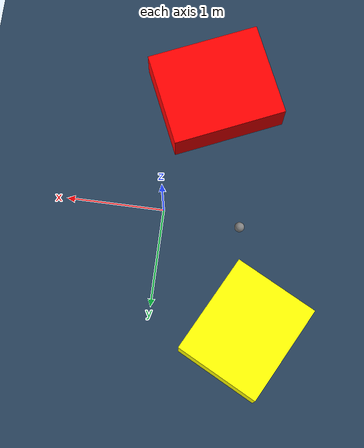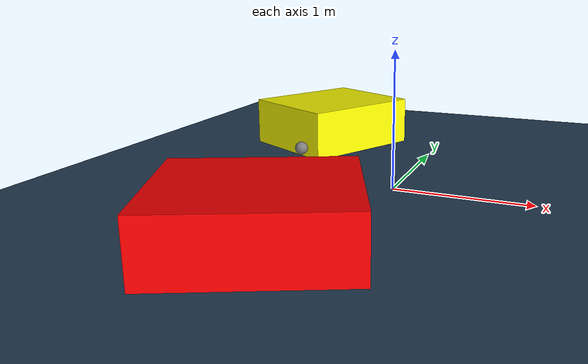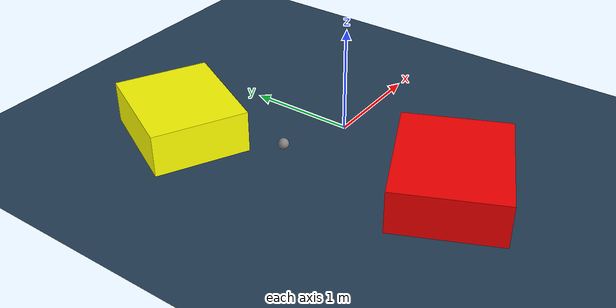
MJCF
<?xml version="1.0" ?>
<mujoco model="generated_environment">
  <option timestep="0.01" integrator="RK4" cone="elliptic"/>
  <default>
    <geom density="1"/>
  </default>
  <asset>
    <texture builtin="gradient" height="3072" rgb1="0.3 0.5 0.7" rgb2="0 0 0" type="skybox" width="512"/>
    <texture builtin="checker" height="300" mark="edge" markrgb="0.8 0.8 0.8" name="groundplane" rgb1="0.2 0.3 0.4" rgb2="0.1 0.2 0.3" type="2d" width="300"/>
    <material name="groundplane" reflectance="0.2" texrepeat="5 5" texture="groundplane" texuniform="true"/>
    <material name="robot" rgba="0.0 1.0 0.0 1"/>
  </asset>
  <worldbody>
    <light dir="0 0 -1" directional="true" pos="0 0 1.5"/>
    <geom condim="4" friction="1.0 0.005 0.001" material="groundplane" name="floor" size="0 0 0.05" type="plane"/>
    <body name="walls"/>
    <body name="robot">
      <joint name="joint_x" type="slide" pos="0 0 0" axis="1 0 0"/>
      <joint name="joint_y" type="slide" pos="0 0 0" axis="0 1 0"/>
      <geom name="robot" type="sphere" pos="-0.785618837241921 0.11912138578610643 0.2" size="0.05" mass="5." friction="1.0 0.005 0.0001" condim="4"/>
      <site name="sensor_ball"/>
    </body>
    <body name="obstacle_1_movable">
      <geom name="obstacle_1_movable" condim="4" pos="-0.9660789544198909 1.1482719242937722 0.2" euler="0 0 152.67217323698685" friction="1.0 0.005 0.001" rgba="1 1 0 1" size="0.4417191279661694 0.5205308641492554 0.2" type="box" mass="0.1"/>
      <joint type="free"/>
    </body>
    <body name="obstacle_2_static">
      <geom name="obstacle_2_static" condim="4" pos="-0.3722232324975314 -1.2938857341874026 0.2" euler="0 0 24.21625512658531" friction="1.0 0.005 0.001" rgba="1 0 0 1" size="0.5879453148202889 0.4869634772580982 0.2" type="box"/>
    </body>
  </worldbody>
  <actuator>
    <motor name="actuator_x" joint="joint_x" gear="1" ctrlrange="-1 1"/>
    <motor name="actuator_y" joint="joint_y" gear="1" ctrlrange="-1 1"/>
  </actuator>
</mujoco>
